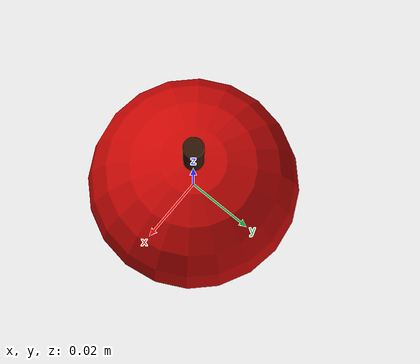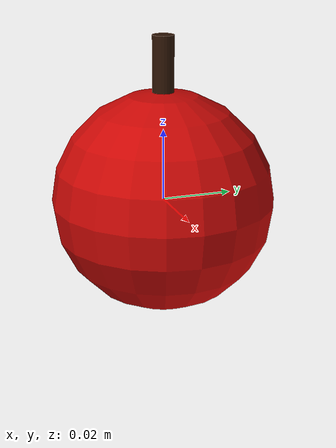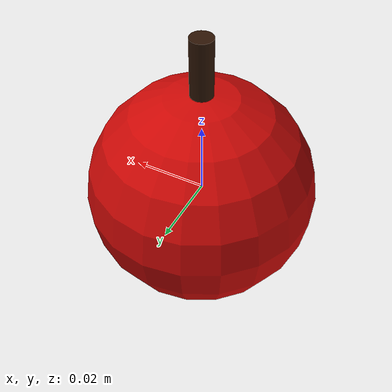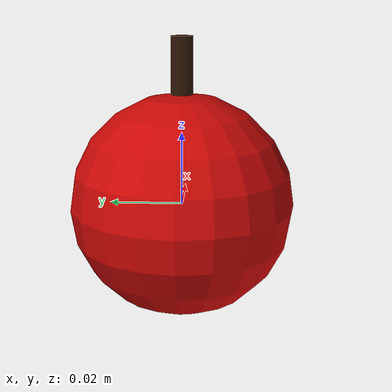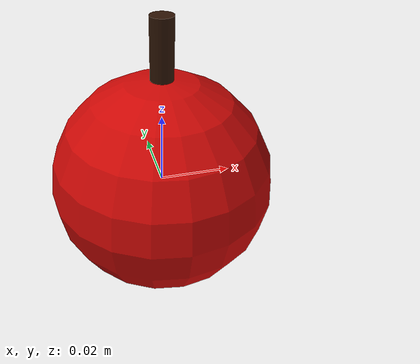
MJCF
<mujoco model="red_apple">
  <worldbody>
    <body>
      <body name="object">
        <geom name="apple_collision" type="sphere" size="0.031" density="620" friction="0.9 0.02 0.002" rgba="0.80 0.03 0.02 1" group="0"/>
        <geom name="apple_visual" type="sphere" size="0.031" rgba="0.80 0.03 0.02 1" contype="0" conaffinity="0" mass="0.0001" group="1"/>
        <geom name="stem_visual" type="cylinder" size="0.003 0.010" pos="0 0 0.036" rgba="0.18 0.08 0.02 1" contype="0" conaffinity="0" mass="0.0001" group="1"/>
      </body>
      <site name="bottom_site" pos="0 0 -0.031" size="0.002" rgba="0 0 0 0"/>
      <site name="top_site" pos="0 0 0.046" size="0.002" rgba="0 0 0 0"/>
      <site name="horizontal_radius_site" pos="0.031 0 0" size="0.002" rgba="0 0 0 0"/>
    </body>
  </worldbody>
</mujoco>
